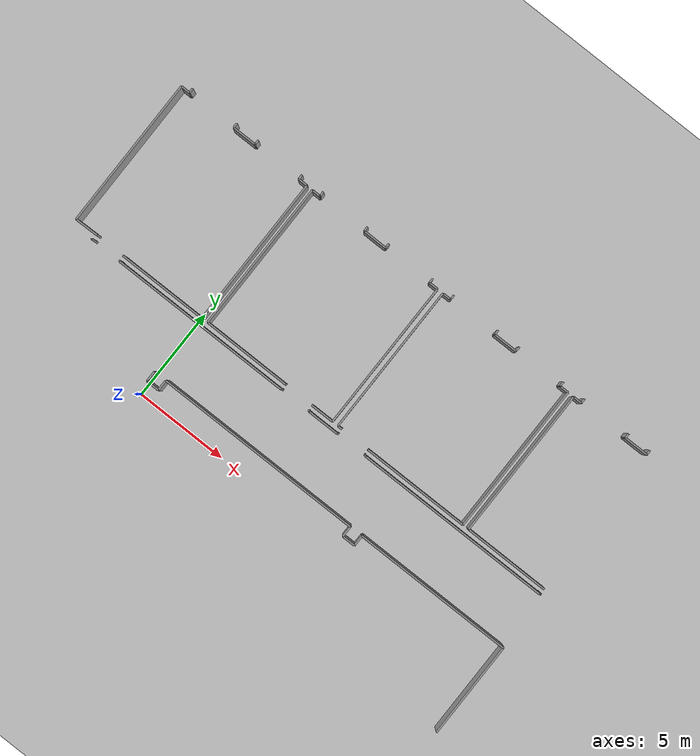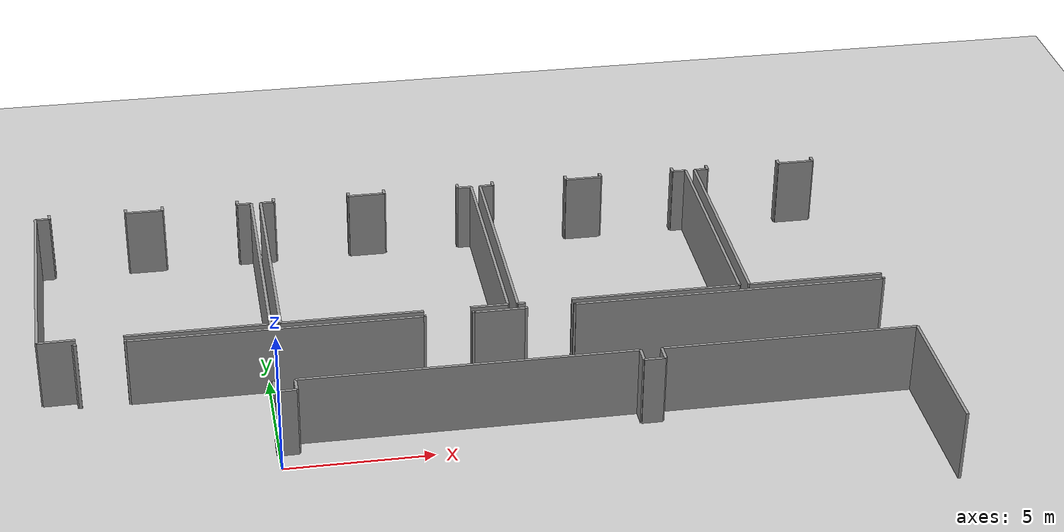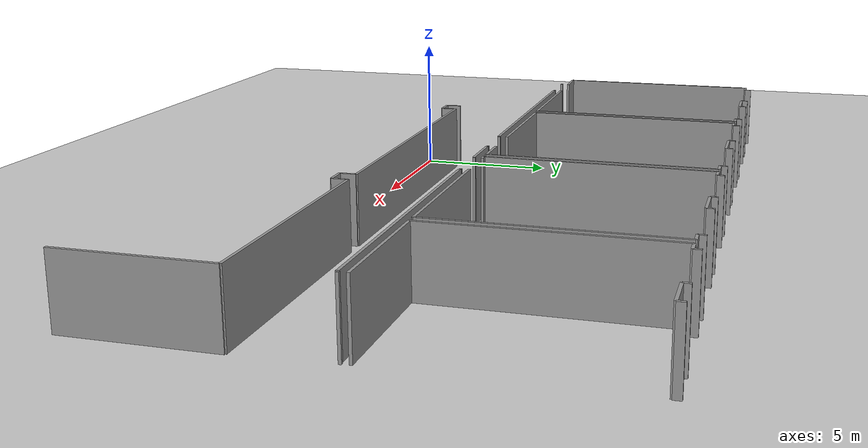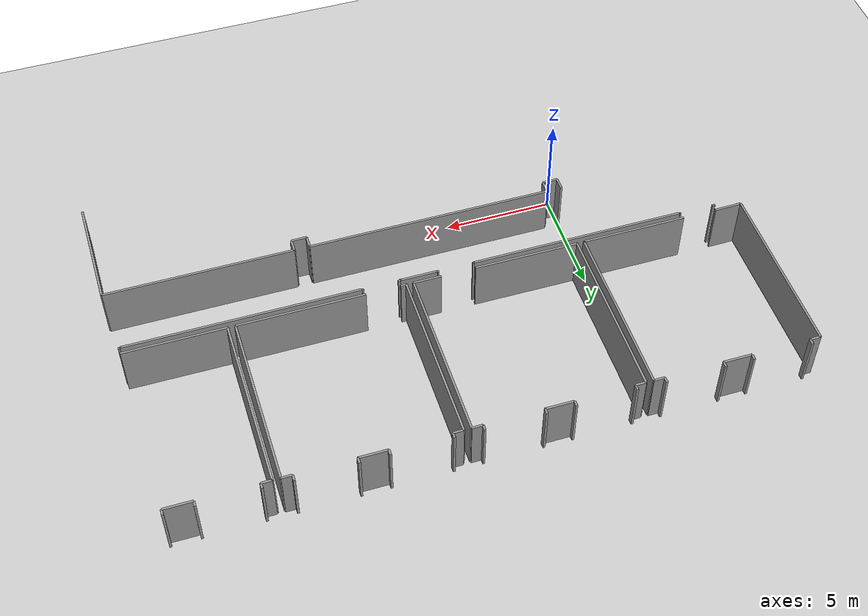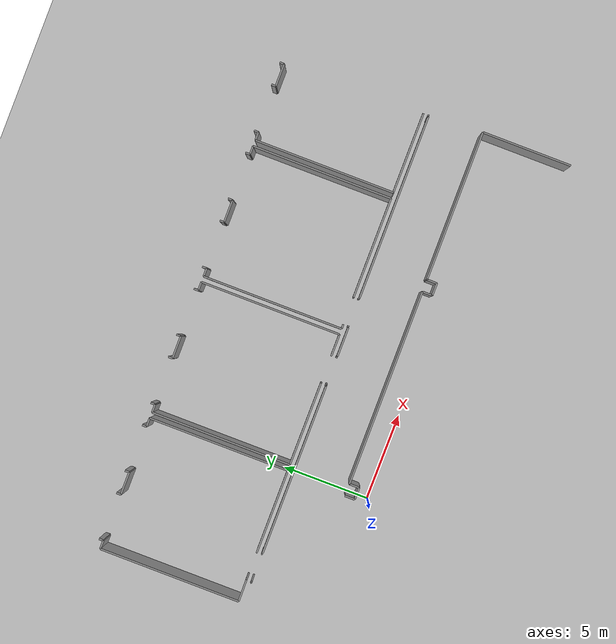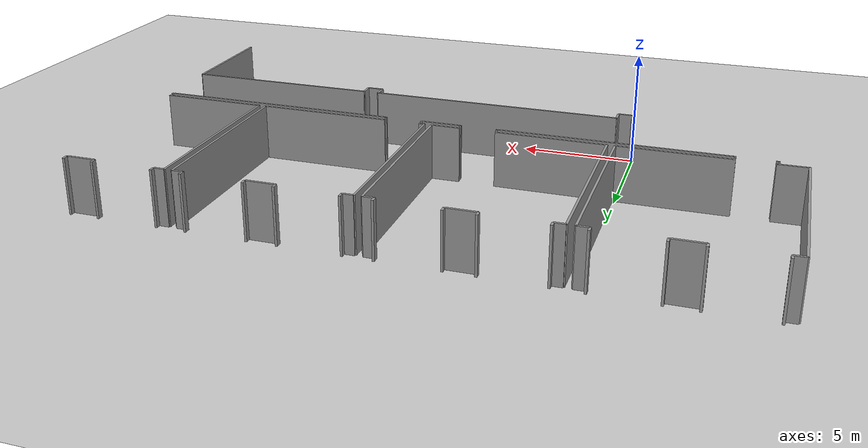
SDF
<sdf version="1.6">
 <world name="default">
  <model name="ground_plane">
   <static>1</static>
   <link name="link">
    <collision name="collision">
     <geometry><plane><normal>0 0 1</normal><size>100 100</size></plane></geometry>
     <surface><friction><ode><mu>100</mu><mu2>50</mu2></ode></friction></surface>
    </collision>
    <visual name="visual">
     <cast_shadows>0</cast_shadows>
     <geometry><plane><normal>0 0 1</normal><size>100 100</size></plane></geometry>
     <material>
      <script><uri>file://media/materials/scripts/gazebo.material</uri><name>Gazebo/Grey</name></script>
     </material>
    </visual>
   </link>
  </model>
  <model name="0510032258_A_40_1_105">
   <static>1</static>
   <link name="Wall_150">
    <collision name="Wall_150_Collision">
     <geometry><box><size>0.582630348613 0.1 2.5</size></box></geometry>
     <pose>0.291315174306 0 1.25 0 0 0</pose>
    </collision>
    <visual name="Wall_150_Visual">
     <pose>0.291315174306 0 1.25 0 0 0</pose>
     <geometry><box><size>0.582630348613 0.1 2.5</size></box></geometry>
     <material>
      <script><uri>file://media/materials/scripts/gazebo.material</uri><name>Gazebo/Grey</name></script>
      <ambient>1 1 1 1</ambient>
     </material>
    </visual>
    <pose>47.84010062 -11.8026476268 0 0 0 -1.57079632679</pose>
   </link>
   <link name="Wall_151">
    <collision name="Wall_151_Collision">
     <geometry><box><size>0.692524646814 0.1 2.5</size></box></geometry>
     <pose>0.346262323407 0 1.25 0 0 0</pose>
    </collision>
    <visual name="Wall_151_Visual">
     <pose>0.346262323407 0 1.25 0 0 0</pose>
     <geometry><box><size>0.692524646814 0.1 2.5</size></box></geometry>
     <material>
      <script><uri>file://media/materials/scripts/gazebo.material</uri><name>Gazebo/Grey</name></script>
      <ambient>1 1 1 1</ambient>
     </material>
    </visual>
    <pose>47.84010062 -12.3852779754 0 0 0 0.0</pose>
   </link>
   <link name="Wall_152">
    <collision name="Wall_152_Collision">
     <geometry><box><size>0.577929667649 0.1 2.5</size></box></geometry>
     <pose>0.288964833825 0 1.25 0 0 0</pose>
    </collision>
    <visual name="Wall_152_Visual">
     <pose>0.288964833825 0 1.25 0 0 0</pose>
     <geometry><box><size>0.577929667649 0.1 2.5</size></box></geometry>
     <material>
      <script><uri>file://media/materials/scripts/gazebo.material</uri><name>Gazebo/Grey</name></script>
      <ambient>1 1 1 1</ambient>
     </material>
    </visual>
    <pose>48.5326252668 -12.3852779754 0 0 0 1.57079632679</pose>
   </link>
   <link name="Wall_153">
    <collision name="Wall_153_Collision">
     <geometry><box><size>11.3070433987 0.1 2.5</size></box></geometry>
     <pose>5.65352169936 0 1.25 0 0 0</pose>
    </collision>
    <visual name="Wall_153_Visual">
     <pose>5.65352169936 0 1.25 0 0 0</pose>
     <geometry><box><size>11.3070433987 0.1 2.5</size></box></geometry>
     <material>
      <script><uri>file://media/materials/scripts/gazebo.material</uri><name>Gazebo/Grey</name></script>
      <ambient>1 1 1 1</ambient>
     </material>
    </visual>
    <pose>48.5326252668 -11.8073483078 0 0 0 0.0</pose>
   </link>
   <link name="Wall_154">
    <collision name="Wall_154_Collision">
     <geometry><box><size>0.58148693973 0.1 2.5</size></box></geometry>
     <pose>0.290743469865 0 1.25 0 0 0</pose>
    </collision>
    <visual name="Wall_154_Visual">
     <pose>0.290743469865 0 1.25 0 0 0</pose>
     <geometry><box><size>0.58148693973 0.1 2.5</size></box></geometry>
     <material>
      <script><uri>file://media/materials/scripts/gazebo.material</uri><name>Gazebo/Grey</name></script>
      <ambient>1 1 1 1</ambient>
     </material>
    </visual>
    <pose>59.8396686655 -11.8073483078 0 0 0 -1.57079632679</pose>
   </link>
   <link name="Wall_155">
    <collision name="Wall_155_Collision">
     <geometry><box><size>0.710183961785 0.1 2.5</size></box></geometry>
     <pose>0.355091980892 0 1.25 0 0 0</pose>
    </collision>
    <visual name="Wall_155_Visual">
     <pose>0.355091980892 0 1.25 0 0 0</pose>
     <geometry><box><size>0.710183961785 0.1 2.5</size></box></geometry>
     <material>
      <script><uri>file://media/materials/scripts/gazebo.material</uri><name>Gazebo/Grey</name></script>
      <ambient>1 1 1 1</ambient>
     </material>
    </visual>
    <pose>59.8396686655 -12.3888352475 0 0 0 0.0</pose>
   </link>
   <link name="Wall_156">
    <collision name="Wall_156_Collision">
     <geometry><box><size>0.58148693973 0.1 2.5</size></box></geometry>
     <pose>0.290743469865 0 1.25 0 0 0</pose>
    </collision>
    <visual name="Wall_156_Visual">
     <pose>0.290743469865 0 1.25 0 0 0</pose>
     <geometry><box><size>0.58148693973 0.1 2.5</size></box></geometry>
     <material>
      <script><uri>file://media/materials/scripts/gazebo.material</uri><name>Gazebo/Grey</name></script>
      <ambient>1 1 1 1</ambient>
     </material>
    </visual>
    <pose>60.5498526273 -12.3888352475 0 0 0 1.57079632679</pose>
   </link>
   <link name="Wall_157">
    <collision name="Wall_157_Collision">
     <geometry><box><size>8.66208456144 0.1 2.5</size></box></geometry>
     <pose>4.33104228072 0 1.25 0 0 0</pose>
    </collision>
    <visual name="Wall_157_Visual">
     <pose>4.33104228072 0 1.25 0 0 0</pose>
     <geometry><box><size>8.66208456144 0.1 2.5</size></box></geometry>
     <material>
      <script><uri>file://media/materials/scripts/gazebo.material</uri><name>Gazebo/Grey</name></script>
      <ambient>1 1 1 1</ambient>
     </material>
    </visual>
    <pose>60.5498526273 -11.8073483078 0 0 0 0.0</pose>
   </link>
   <link name="Wall_158">
    <collision name="Wall_158_Collision">
     <geometry><box><size>5.16960565098 0.1 2.5</size></box></geometry>
     <pose>2.58480282549 0 1.25 0 0 0</pose>
    </collision>
    <visual name="Wall_158_Visual">
     <pose>2.58480282549 0 1.25 0 0 0</pose>
     <geometry><box><size>5.16960565098 0.1 2.5</size></box></geometry>
     <material>
      <script><uri>file://media/materials/scripts/gazebo.material</uri><name>Gazebo/Grey</name></script>
      <ambient>1 1 1 1</ambient>
     </material>
    </visual>
    <pose>69.2119371887 -11.8073483078 0 0 0 -1.57079632679</pose>
   </link>
   <link name="Wall_308">
    <collision name="Wall_308_Collision">
     <geometry><box><size>8.1371328387 0.1 2.5</size></box></geometry>
     <pose>4.06856641935 0 1.25 0 0 0</pose>
    </collision>
    <visual name="Wall_308_Visual">
     <pose>4.06856641935 0 1.25 0 0 0</pose>
     <geometry><box><size>8.1371328387 0.1 2.5</size></box></geometry>
     <material>
      <script><uri>file://media/materials/scripts/gazebo.material</uri><name>Gazebo/Grey</name></script>
      <ambient>1 1 1 1</ambient>
     </material>
    </visual>
    <pose>40.3412440289 -8.40062506352 0 0 0 1.57079632679</pose>
   </link>
   <link name="Wall_309">
    <collision name="Wall_309_Collision">
     <geometry><box><size>0.487473320459 0.1 2.5</size></box></geometry>
     <pose>0.24373666023 0 1.25 0 0 0</pose>
    </collision>
    <visual name="Wall_309_Visual">
     <pose>0.24373666023 0 1.25 0 0 0</pose>
     <geometry><box><size>0.487473320459 0.1 2.5</size></box></geometry>
     <material>
      <script><uri>file://media/materials/scripts/gazebo.material</uri><name>Gazebo/Grey</name></script>
      <ambient>1 1 1 1</ambient>
     </material>
    </visual>
    <pose>40.3412440289 -0.26349222482 0 0 0 0.0</pose>
   </link>
   <link name="Wall_310">
    <collision name="Wall_310_Collision">
     <geometry><box><size>0.257902225836 0.1 2.5</size></box></geometry>
     <pose>0.128951112918 0 1.25 0 0 0</pose>
    </collision>
    <visual name="Wall_310_Visual">
     <pose>0.128951112918 0 1.25 0 0 0</pose>
     <geometry><box><size>0.257902225836 0.1 2.5</size></box></geometry>
     <material>
      <script><uri>file://media/materials/scripts/gazebo.material</uri><name>Gazebo/Grey</name></script>
      <ambient>1 1 1 1</ambient>
     </material>
    </visual>
    <pose>40.8287173493 -0.26349222482 0 0 0 1.57079632679</pose>
   </link>
   <link name="Wall_311">
    <collision name="Wall_311_Collision">
     <geometry><box><size>0.256250635227 0.1 2.5</size></box></geometry>
     <pose>0.128125317614 0 1.25 0 0 0</pose>
    </collision>
    <visual name="Wall_311_Visual">
     <pose>0.128125317614 0 1.25 0 0 0</pose>
     <geometry><box><size>0.256250635227 0.1 2.5</size></box></geometry>
     <material>
      <script><uri>file://media/materials/scripts/gazebo.material</uri><name>Gazebo/Grey</name></script>
      <ambient>1 1 1 1</ambient>
     </material>
    </visual>
    <pose>43.5346579937 -0.00558999898364 0 0 0 -1.57079632679</pose>
   </link>
   <link name="Wall_312">
    <collision name="Wall_312_Collision">
     <geometry><box><size>1.30729748958 0.1 2.5</size></box></geometry>
     <pose>0.653648744791 0 1.25 0 0 0</pose>
    </collision>
    <visual name="Wall_312_Visual">
     <pose>0.653648744791 0 1.25 0 0 0</pose>
     <geometry><box><size>1.30729748958 0.1 2.5</size></box></geometry>
     <material>
      <script><uri>file://media/materials/scripts/gazebo.material</uri><name>Gazebo/Grey</name></script>
      <ambient>1 1 1 1</ambient>
     </material>
    </visual>
    <pose>43.5346579937 -0.261840634211 0 0 0 0.0</pose>
   </link>
   <link name="Wall_313">
    <collision name="Wall_313_Collision">
     <geometry><box><size>0.256377680659 0.1 2.5</size></box></geometry>
     <pose>0.128188840329 0 1.25 0 0 0</pose>
    </collision>
    <visual name="Wall_313_Visual">
     <pose>0.128188840329 0 1.25 0 0 0</pose>
     <geometry><box><size>0.256377680659 0.1 2.5</size></box></geometry>
     <material>
      <script><uri>file://media/materials/scripts/gazebo.material</uri><name>Gazebo/Grey</name></script>
      <ambient>1 1 1 1</ambient>
     </material>
    </visual>
    <pose>44.8419554833 -0.261840634211 0 0 0 1.57079632679</pose>
   </link>
   <link name="Wall_314">
    <collision name="Wall_314_Collision">
     <geometry><box><size>0.252185181421 0.1 2.5</size></box></geometry>
     <pose>0.12609259071 0 1.25 0 0 0</pose>
    </collision>
    <visual name="Wall_314_Visual">
     <pose>0.12609259071 0 1.25 0 0 0</pose>
     <geometry><box><size>0.252185181421 0.1 2.5</size></box></geometry>
     <material>
      <script><uri>file://media/materials/scripts/gazebo.material</uri><name>Gazebo/Grey</name></script>
      <ambient>1 1 1 1</ambient>
     </material>
    </visual>
    <pose>47.52502795 -0.0054629535522 0 0 0 -1.57079632679</pose>
   </link>
   <link name="Wall_315">
    <collision name="Wall_315_Collision">
     <geometry><box><size>0.499288545584 0.1 2.5</size></box></geometry>
     <pose>0.249644272792 0 1.25 0 0 0</pose>
    </collision>
    <visual name="Wall_315_Visual">
     <pose>0.249644272792 0 1.25 0 0 0</pose>
     <geometry><box><size>0.499288545584 0.1 2.5</size></box></geometry>
     <material>
      <script><uri>file://media/materials/scripts/gazebo.material</uri><name>Gazebo/Grey</name></script>
      <ambient>1 1 1 1</ambient>
     </material>
    </visual>
    <pose>47.52502795 -0.257648134973 0 0 0 0.0</pose>
   </link>
   <link name="Wall_316">
    <collision name="Wall_316_Collision">
     <geometry><box><size>8.12341193211 0.1 2.5</size></box></geometry>
     <pose>4.06170596605 0 1.25 0 0 0</pose>
    </collision>
    <visual name="Wall_316_Visual">
     <pose>4.06170596605 0 1.25 0 0 0</pose>
     <geometry><box><size>8.12341193211 0.1 2.5</size></box></geometry>
     <material>
      <script><uri>file://media/materials/scripts/gazebo.material</uri><name>Gazebo/Grey</name></script>
      <ambient>1 1 1 1</ambient>
     </material>
    </visual>
    <pose>48.0243164956 -0.257648134973 0 0 0 -1.57079632679</pose>
   </link>
   <link name="Wall_317">
    <collision name="Wall_317_Collision">
     <geometry><box><size>4.84475048277 0.1 2.5</size></box></geometry>
     <pose>2.42237524139 0 1.25 0 0 0</pose>
    </collision>
    <visual name="Wall_317_Visual">
     <pose>2.42237524139 0 1.25 0 0 0</pose>
     <geometry><box><size>4.84475048277 0.1 2.5</size></box></geometry>
     <material>
      <script><uri>file://media/materials/scripts/gazebo.material</uri><name>Gazebo/Grey</name></script>
      <ambient>1 1 1 1</ambient>
     </material>
    </visual>
    <pose>48.0243164956 -8.38106006708 0 0 0 3.14159265359</pose>
   </link>
   <link name="Wall_318">
    <collision name="Wall_318_Collision">
     <geometry><box><size>1.2662859252 0.1 2.5</size></box></geometry>
     <pose>0.633142962601 0 1.25 0 0 0</pose>
    </collision>
    <visual name="Wall_318_Visual">
     <pose>0.633142962601 0 1.25 0 0 0</pose>
     <geometry><box><size>1.2662859252 0.1 2.5</size></box></geometry>
     <material>
      <script><uri>file://media/materials/scripts/gazebo.material</uri><name>Gazebo/Grey</name></script>
      <ambient>1 1 1 1</ambient>
     </material>
    </visual>
    <pose>41.6073787987 -8.38106006708 0 0 0 -3.12614134471</pose>
   </link>
   <link name="Wall_319">
    <collision name="Wall_319_Collision">
     <geometry><box><size>8.10028966358 0.1 2.5</size></box></geometry>
     <pose>4.05014483179 0 1.25 0 0 0</pose>
    </collision>
    <visual name="Wall_319_Visual">
     <pose>4.05014483179 0 1.25 0 0 0</pose>
     <geometry><box><size>8.10028966358 0.1 2.5</size></box></geometry>
     <material>
      <script><uri>file://media/materials/scripts/gazebo.material</uri><name>Gazebo/Grey</name></script>
      <ambient>1 1 1 1</ambient>
     </material>
    </visual>
    <pose>48.3606057526 -8.3686096148 0 0 0 1.57079632679</pose>
   </link>
   <link name="Wall_320">
    <collision name="Wall_320_Collision">
     <geometry><box><size>0.472863095843 0.1 2.5</size></box></geometry>
     <pose>0.236431547922 0 1.25 0 0 0</pose>
    </collision>
    <visual name="Wall_320_Visual">
     <pose>0.236431547922 0 1.25 0 0 0</pose>
     <geometry><box><size>0.472863095843 0.1 2.5</size></box></geometry>
     <material>
      <script><uri>file://media/materials/scripts/gazebo.material</uri><name>Gazebo/Grey</name></script>
      <ambient>1 1 1 1</ambient>
     </material>
    </visual>
    <pose>48.3606057526 -0.268319951215 0 0 0 0.0</pose>
   </link>
   <link name="Wall_321">
    <collision name="Wall_321_Collision">
     <geometry><box><size>0.257902225836 0.1 2.5</size></box></geometry>
     <pose>0.128951112918 0 1.25 0 0 0</pose>
    </collision>
    <visual name="Wall_321_Visual">
     <pose>0.128951112918 0 1.25 0 0 0</pose>
     <geometry><box><size>0.257902225836 0.1 2.5</size></box></geometry>
     <material>
      <script><uri>file://media/materials/scripts/gazebo.material</uri><name>Gazebo/Grey</name></script>
      <ambient>1 1 1 1</ambient>
     </material>
    </visual>
    <pose>48.8334688485 -0.268319951215 0 0 0 1.57079632679</pose>
   </link>
   <link name="Wall_322">
    <collision name="Wall_322_Collision">
     <geometry><box><size>0.248373818477 0.1 2.5</size></box></geometry>
     <pose>0.124186909239 0 1.25 0 0 0</pose>
    </collision>
    <visual name="Wall_322_Visual">
     <pose>0.124186909239 0 1.25 0 0 0</pose>
     <geometry><box><size>0.248373818477 0.1 2.5</size></box></geometry>
     <material>
      <script><uri>file://media/materials/scripts/gazebo.material</uri><name>Gazebo/Grey</name></script>
      <ambient>1 1 1 1</ambient>
     </material>
    </visual>
    <pose>51.5415692652 -0.0104177253786 0 0 0 -1.57079632679</pose>
   </link>
   <link name="Wall_323">
    <collision name="Wall_323_Collision">
     <geometry><box><size>1.29903953654 0.1 2.5</size></box></geometry>
     <pose>0.649519768269 0 1.25 0 0 0</pose>
    </collision>
    <visual name="Wall_323_Visual">
     <pose>0.649519768269 0 1.25 0 0 0</pose>
     <geometry><box><size>1.29903953654 0.1 2.5</size></box></geometry>
     <material>
      <script><uri>file://media/materials/scripts/gazebo.material</uri><name>Gazebo/Grey</name></script>
      <ambient>1 1 1 1</ambient>
     </material>
    </visual>
    <pose>51.5415692652 -0.258791543856 0 0 0 0.0</pose>
   </link>
   <link name="Wall_324">
    <collision name="Wall_324_Collision">
     <geometry><box><size>0.253201544872 0.1 2.5</size></box></geometry>
     <pose>0.126600772436 0 1.25 0 0 0</pose>
    </collision>
    <visual name="Wall_324_Visual">
     <pose>0.126600772436 0 1.25 0 0 0</pose>
     <geometry><box><size>0.253201544872 0.1 2.5</size></box></geometry>
     <material>
      <script><uri>file://media/materials/scripts/gazebo.material</uri><name>Gazebo/Grey</name></script>
      <ambient>1 1 1 1</ambient>
     </material>
    </visual>
    <pose>52.8406088017 -0.258791543856 0 0 0 1.57079632679</pose>
   </link>
   <link name="Wall_325">
    <collision name="Wall_325_Collision">
     <geometry><box><size>0.255361317207 0.1 2.5</size></box></geometry>
     <pose>0.127680658604 0 1.25 0 0 0</pose>
    </collision>
    <visual name="Wall_325_Visual">
     <pose>0.127680658604 0 1.25 0 0 0</pose>
     <geometry><box><size>0.255361317207 0.1 2.5</size></box></geometry>
     <material>
      <script><uri>file://media/materials/scripts/gazebo.material</uri><name>Gazebo/Grey</name></script>
      <ambient>1 1 1 1</ambient>
     </material>
    </visual>
    <pose>55.5321933123 -0.00558999898364 0 0 0 -1.57079632679</pose>
   </link>
   <link name="Wall_326">
    <collision name="Wall_326_Collision">
     <geometry><box><size>0.494333773757 0.1 2.5</size></box></geometry>
     <pose>0.247166886879 0 1.25 0 0 0</pose>
    </collision>
    <visual name="Wall_326_Visual">
     <pose>0.247166886879 0 1.25 0 0 0</pose>
     <geometry><box><size>0.494333773757 0.1 2.5</size></box></geometry>
     <material>
      <script><uri>file://media/materials/scripts/gazebo.material</uri><name>Gazebo/Grey</name></script>
      <ambient>1 1 1 1</ambient>
     </material>
    </visual>
    <pose>55.5321933123 -0.260951316191 0 0 0 0.0</pose>
   </link>
   <link name="Wall_327">
    <collision name="Wall_327_Collision">
     <geometry><box><size>8.11718670597 0.1 2.5</size></box></geometry>
     <pose>4.05859335298 0 1.25 0 0 0</pose>
    </collision>
    <visual name="Wall_327_Visual">
     <pose>4.05859335298 0 1.25 0 0 0</pose>
     <geometry><box><size>8.11718670597 0.1 2.5</size></box></geometry>
     <material>
      <script><uri>file://media/materials/scripts/gazebo.material</uri><name>Gazebo/Grey</name></script>
      <ambient>1 1 1 1</ambient>
     </material>
    </visual>
    <pose>56.0265270861 -0.260951316191 0 0 0 -1.57079632679</pose>
   </link>
   <link name="Wall_328">
    <collision name="Wall_328_Collision">
     <geometry><box><size>1.28023681268 0.1 2.5</size></box></geometry>
     <pose>0.640118406342 0 1.25 0 0 0</pose>
    </collision>
    <visual name="Wall_328_Visual">
     <pose>0.640118406342 0 1.25 0 0 0</pose>
     <geometry><box><size>1.28023681268 0.1 2.5</size></box></geometry>
     <material>
      <script><uri>file://media/materials/scripts/gazebo.material</uri><name>Gazebo/Grey</name></script>
      <ambient>1 1 1 1</ambient>
     </material>
    </visual>
    <pose>56.0265270861 -8.37813802216 0 0 0 3.14159265359</pose>
   </link>
   <link name="Wall_329">
    <collision name="Wall_329_Collision">
     <geometry><box><size>4.80131039999 0.1 2.5</size></box></geometry>
     <pose>2.4006552 0 1.25 0 0 0</pose>
    </collision>
    <visual name="Wall_329_Visual">
     <pose>2.4006552 0 1.25 0 0 0</pose>
     <geometry><box><size>4.80131039999 0.1 2.5</size></box></geometry>
     <material>
      <script><uri>file://media/materials/scripts/gazebo.material</uri><name>Gazebo/Grey</name></script>
      <ambient>1 1 1 1</ambient>
     </material>
    </visual>
    <pose>53.1619066978 -8.37813802216 0 0 0 3.1396081092</pose>
   </link>
   <link name="Wall_330">
    <collision name="Wall_330_Collision">
     <geometry><box><size>8.12087102348 0.1 2.5</size></box></geometry>
     <pose>4.06043551174 0 1.25 0 0 0</pose>
    </collision>
    <visual name="Wall_330_Visual">
     <pose>4.06043551174 0 1.25 0 0 0</pose>
     <geometry><box><size>8.12087102348 0.1 2.5</size></box></geometry>
     <material>
      <script><uri>file://media/materials/scripts/gazebo.material</uri><name>Gazebo/Grey</name></script>
      <ambient>1 1 1 1</ambient>
     </material>
    </visual>
    <pose>56.3560829353 -8.3843632483 0 0 0 1.57079632679</pose>
   </link>
   <link name="Wall_331">
    <collision name="Wall_331_Collision">
     <geometry><box><size>0.47260900498 0.1 2.5</size></box></geometry>
     <pose>0.23630450249 0 1.25 0 0 0</pose>
    </collision>
    <visual name="Wall_331_Visual">
     <pose>0.23630450249 0 1.25 0 0 0</pose>
     <geometry><box><size>0.47260900498 0.1 2.5</size></box></geometry>
     <material>
      <script><uri>file://media/materials/scripts/gazebo.material</uri><name>Gazebo/Grey</name></script>
      <ambient>1 1 1 1</ambient>
     </material>
    </visual>
    <pose>56.3560829353 -0.26349222482 0 0 0 0.0</pose>
   </link>
   <link name="Wall_332">
    <collision name="Wall_332_Collision">
     <geometry><box><size>0.257902225836 0.1 2.5</size></box></geometry>
     <pose>0.128951112918 0 1.25 0 0 0</pose>
    </collision>
    <visual name="Wall_332_Visual">
     <pose>0.128951112918 0 1.25 0 0 0</pose>
     <geometry><box><size>0.257902225836 0.1 2.5</size></box></geometry>
     <material>
      <script><uri>file://media/materials/scripts/gazebo.material</uri><name>Gazebo/Grey</name></script>
      <ambient>1 1 1 1</ambient>
     </material>
    </visual>
    <pose>56.8286919402 -0.26349222482 0 0 0 1.57079632679</pose>
   </link>
   <link name="Wall_333">
    <collision name="Wall_333_Collision">
     <geometry><box><size>0.256123589796 0.1 2.5</size></box></geometry>
     <pose>0.128061794898 0 1.25 0 0 0</pose>
    </collision>
    <visual name="Wall_333_Visual">
     <pose>0.128061794898 0 1.25 0 0 0</pose>
     <geometry><box><size>0.256123589796 0.1 2.5</size></box></geometry>
     <material>
      <script><uri>file://media/materials/scripts/gazebo.material</uri><name>Gazebo/Grey</name></script>
      <ambient>1 1 1 1</ambient>
     </material>
    </visual>
    <pose>59.5407307653 -0.00558999898364 0 0 0 -1.57079632679</pose>
   </link>
   <link name="Wall_334">
    <collision name="Wall_334_Collision">
     <geometry><box><size>1.29573635532 0.1 2.5</size></box></geometry>
     <pose>0.64786817766 0 1.25 0 0 0</pose>
    </collision>
    <visual name="Wall_334_Visual">
     <pose>0.64786817766 0 1.25 0 0 0</pose>
     <geometry><box><size>1.29573635532 0.1 2.5</size></box></geometry>
     <material>
      <script><uri>file://media/materials/scripts/gazebo.material</uri><name>Gazebo/Grey</name></script>
      <ambient>1 1 1 1</ambient>
     </material>
    </visual>
    <pose>59.5407307653 -0.261713588779 0 0 0 0.0</pose>
   </link>
   <link name="Wall_335">
    <collision name="Wall_335_Collision">
     <geometry><box><size>0.261713588779 0.1 2.5</size></box></geometry>
     <pose>0.13085679439 0 1.25 0 0 0</pose>
    </collision>
    <visual name="Wall_335_Visual">
     <pose>0.13085679439 0 1.25 0 0 0</pose>
     <geometry><box><size>0.261713588779 0.1 2.5</size></box></geometry>
     <material>
      <script><uri>file://media/materials/scripts/gazebo.material</uri><name>Gazebo/Grey</name></script>
      <ambient>1 1 1 1</ambient>
     </material>
    </visual>
    <pose>60.8364671206 -0.261713588779 0 0 0 1.57079632679</pose>
   </link>
   <link name="Wall_336">
    <collision name="Wall_336_Collision">
     <geometry><box><size>0.262094725074 0.1 2.5</size></box></geometry>
     <pose>0.131047362537 0 1.25 0 0 0</pose>
    </collision>
    <visual name="Wall_336_Visual">
     <pose>0.131047362537 0 1.25 0 0 0</pose>
     <geometry><box><size>0.262094725074 0.1 2.5</size></box></geometry>
     <material>
      <script><uri>file://media/materials/scripts/gazebo.material</uri><name>Gazebo/Grey</name></script>
      <ambient>1 1 1 1</ambient>
     </material>
    </visual>
    <pose>63.5344039028 -0.0 0 0 0 -1.57079632679</pose>
   </link>
   <link name="Wall_337">
    <collision name="Wall_337_Collision">
     <geometry><box><size>0.486075820713 0.1 2.5</size></box></geometry>
     <pose>0.243037910357 0 1.25 0 0 0</pose>
    </collision>
    <visual name="Wall_337_Visual">
     <pose>0.243037910357 0 1.25 0 0 0</pose>
     <geometry><box><size>0.486075820713 0.1 2.5</size></box></geometry>
     <material>
      <script><uri>file://media/materials/scripts/gazebo.material</uri><name>Gazebo/Grey</name></script>
      <ambient>1 1 1 1</ambient>
     </material>
    </visual>
    <pose>63.5344039028 -0.262094725074 0 0 0 0.0</pose>
   </link>
   <link name="Wall_338">
    <collision name="Wall_338_Collision">
     <geometry><box><size>8.11604329708 0.1 2.5</size></box></geometry>
     <pose>4.05802164854 0 1.25 0 0 0</pose>
    </collision>
    <visual name="Wall_338_Visual">
     <pose>4.05802164854 0 1.25 0 0 0</pose>
     <geometry><box><size>8.11604329708 0.1 2.5</size></box></geometry>
     <material>
      <script><uri>file://media/materials/scripts/gazebo.material</uri><name>Gazebo/Grey</name></script>
      <ambient>1 1 1 1</ambient>
     </material>
    </visual>
    <pose>64.0204797235 -0.262094725074 0 0 0 -1.57079632679</pose>
   </link>
   <link name="Wall_339">
    <collision name="Wall_339_Collision">
     <geometry><box><size>5.82122166887 0.1 2.5</size></box></geometry>
     <pose>2.91061083443 0 1.25 0 0 0</pose>
    </collision>
    <visual name="Wall_339_Visual">
     <pose>2.91061083443 0 1.25 0 0 0</pose>
     <geometry><box><size>5.82122166887 0.1 2.5</size></box></geometry>
     <material>
      <script><uri>file://media/materials/scripts/gazebo.material</uri><name>Gazebo/Grey</name></script>
      <ambient>1 1 1 1</ambient>
     </material>
    </visual>
    <pose>64.0204797235 -8.37813802216 0 0 0 3.14159265359</pose>
   </link>
   <link name="Wall_340">
    <collision name="Wall_340_Collision">
     <geometry><box><size>0.263692762677 0.1 2.5</size></box></geometry>
     <pose>0.131846381338 0 1.25 0 0 0</pose>
    </collision>
    <visual name="Wall_340_Visual">
     <pose>0.131846381338 0 1.25 0 0 0</pose>
     <geometry><box><size>0.263692762677 0.1 2.5</size></box></geometry>
     <material>
      <script><uri>file://media/materials/scripts/gazebo.material</uri><name>Gazebo/Grey</name></script>
      <ambient>1 1 1 1</ambient>
     </material>
    </visual>
    <pose>56.6197022055 -8.37813802216 0 0 0 -3.11798258377</pose>
   </link>
   <link name="Wall_341">
    <collision name="Wall_341_Collision">
     <geometry><box><size>8.10981807094 0.1 2.5</size></box></geometry>
     <pose>4.05490903547 0 1.25 0 0 0</pose>
    </collision>
    <visual name="Wall_341_Visual">
     <pose>4.05490903547 0 1.25 0 0 0</pose>
     <geometry><box><size>8.10981807094 0.1 2.5</size></box></geometry>
     <material>
      <script><uri>file://media/materials/scripts/gazebo.material</uri><name>Gazebo/Grey</name></script>
      <ambient>1 1 1 1</ambient>
     </material>
    </visual>
    <pose>64.362486025 -8.37686756784 0 0 0 1.57079632679</pose>
   </link>
   <link name="Wall_342">
    <collision name="Wall_342_Collision">
     <geometry><box><size>0.475404004472 0.1 2.5</size></box></geometry>
     <pose>0.237702002236 0 1.25 0 0 0</pose>
    </collision>
    <visual name="Wall_342_Visual">
     <pose>0.237702002236 0 1.25 0 0 0</pose>
     <geometry><box><size>0.475404004472 0.1 2.5</size></box></geometry>
     <material>
      <script><uri>file://media/materials/scripts/gazebo.material</uri><name>Gazebo/Grey</name></script>
      <ambient>1 1 1 1</ambient>
     </material>
    </visual>
    <pose>64.362486025 -0.2670494969 0 0 0 0.0</pose>
   </link>
   <link name="Wall_343">
    <collision name="Wall_343_Collision">
     <geometry><box><size>0.257521089542 0.1 2.5</size></box></geometry>
     <pose>0.128760544771 0 1.25 0 0 0</pose>
    </collision>
    <visual name="Wall_343_Visual">
     <pose>0.128760544771 0 1.25 0 0 0</pose>
     <geometry><box><size>0.257521089542 0.1 2.5</size></box></geometry>
     <material>
      <script><uri>file://media/materials/scripts/gazebo.material</uri><name>Gazebo/Grey</name></script>
      <ambient>1 1 1 1</ambient>
     </material>
    </visual>
    <pose>64.8378900295 -0.2670494969 0 0 0 1.57079632679</pose>
   </link>
   <link name="Wall_344">
    <collision name="Wall_344_Collision">
     <geometry><box><size>0.248119727615 0.1 2.5</size></box></geometry>
     <pose>0.124059863807 0 1.25 0 0 0</pose>
    </collision>
    <visual name="Wall_344_Visual">
     <pose>0.124059863807 0 1.25 0 0 0</pose>
     <geometry><box><size>0.248119727615 0.1 2.5</size></box></geometry>
     <material>
      <script><uri>file://media/materials/scripts/gazebo.material</uri><name>Gazebo/Grey</name></script>
      <ambient>1 1 1 1</ambient>
     </material>
    </visual>
    <pose>67.5384947657 -0.00952840735847 0 0 0 -1.57079632679</pose>
   </link>
   <link name="Wall_345">
    <collision name="Wall_345_Collision">
     <geometry><box><size>1.29700680964 0.1 2.5</size></box></geometry>
     <pose>0.648503404818 0 1.25 0 0 0</pose>
    </collision>
    <visual name="Wall_345_Visual">
     <pose>0.648503404818 0 1.25 0 0 0</pose>
     <geometry><box><size>1.29700680964 0.1 2.5</size></box></geometry>
     <material>
      <script><uri>file://media/materials/scripts/gazebo.material</uri><name>Gazebo/Grey</name></script>
      <ambient>1 1 1 1</ambient>
     </material>
    </visual>
    <pose>67.5384947657 -0.257648134973 0 0 0 0.0</pose>
   </link>
   <link name="Wall_346">
    <collision name="Wall_346_Collision">
     <geometry><box><size>0.257521089542 0.1 2.5</size></box></geometry>
     <pose>0.128760544771 0 1.25 0 0 0</pose>
    </collision>
    <visual name="Wall_346_Visual">
     <pose>0.128760544771 0 1.25 0 0 0</pose>
     <geometry><box><size>0.257521089542 0.1 2.5</size></box></geometry>
     <material>
      <script><uri>file://media/materials/scripts/gazebo.material</uri><name>Gazebo/Grey</name></script>
      <ambient>1 1 1 1</ambient>
     </material>
    </visual>
    <pose>68.8355015754 -0.257648134973 0 0 0 1.57079632679</pose>
   </link>
   <link name="Wall_351">
    <collision name="Wall_351_Collision">
     <geometry><box><size>4.64999383506 0.1 2.5</size></box></geometry>
     <pose>2.32499691753 0 1.25 0 0 0</pose>
    </collision>
    <visual name="Wall_351_Visual">
     <pose>2.32499691753 0 1.25 0 0 0</pose>
     <geometry><box><size>4.64999383506 0.1 2.5</size></box></geometry>
     <material>
      <script><uri>file://media/materials/scripts/gazebo.material</uri><name>Gazebo/Grey</name></script>
      <ambient>1 1 1 1</ambient>
     </material>
    </visual>
    <pose>69.0124758614 -8.38296574855 0 0 0 3.14028121476</pose>
   </link>
   <link name="Wall_369">
    <collision name="Wall_369_Collision">
     <geometry><box><size>0.0229952230918 0.1 2.5</size></box></geometry>
     <pose>0.0114976115459 0 1.25 0 0 0</pose>
    </collision>
    <visual name="Wall_369_Visual">
     <pose>0.0114976115459 0 1.25 0 0 0</pose>
     <geometry><box><size>0.0229952230918 0.1 2.5</size></box></geometry>
     <material>
      <script><uri>file://media/materials/scripts/gazebo.material</uri><name>Gazebo/Grey</name></script>
      <ambient>1 1 1 1</ambient>
     </material>
    </visual>
    <pose>41.5291188129 -8.70172273605 0 0 0 1.57079632679</pose>
   </link>
   <link name="Wall_370">
    <collision name="Wall_370_Collision">
     <geometry><box><size>0.109513161907 0.1 2.5</size></box></geometry>
     <pose>0.0547565809533 0 1.25 0 0 0</pose>
    </collision>
    <visual name="Wall_370_Visual">
     <pose>0.0547565809533 0 1.25 0 0 0</pose>
     <geometry><box><size>0.109513161907 0.1 2.5</size></box></geometry>
     <material>
      <script><uri>file://media/materials/scripts/gazebo.material</uri><name>Gazebo/Grey</name></script>
      <ambient>1 1 1 1</ambient>
     </material>
    </visual>
    <pose>41.5291188129 -8.67872751296 0 0 0 0.0</pose>
   </link>
   <link name="Wall_371">
    <collision name="Wall_371_Collision">
     <geometry><box><size>0.0701290781583 0.1 2.5</size></box></geometry>
     <pose>0.0350645390792 0 1.25 0 0 0</pose>
    </collision>
    <visual name="Wall_371_Visual">
     <pose>0.0350645390792 0 1.25 0 0 0</pose>
     <geometry><box><size>0.0701290781583 0.1 2.5</size></box></geometry>
     <material>
      <script><uri>file://media/materials/scripts/gazebo.material</uri><name>Gazebo/Grey</name></script>
      <ambient>1 1 1 1</ambient>
     </material>
    </visual>
    <pose>43.1883321476 -8.67872751296 0 0 0 0.0</pose>
   </link>
   <link name="Wall_372">
    <collision name="Wall_372_Collision">
     <geometry><box><size>0.0195649964427 0.1 2.5</size></box></geometry>
     <pose>0.00978249822136 0 1.25 0 0 0</pose>
    </collision>
    <visual name="Wall_372_Visual">
     <pose>0.00978249822136 0 1.25 0 0 0</pose>
     <geometry><box><size>0.0195649964427 0.1 2.5</size></box></geometry>
     <material>
      <script><uri>file://media/materials/scripts/gazebo.material</uri><name>Gazebo/Grey</name></script>
      <ambient>1 1 1 1</ambient>
     </material>
    </visual>
    <pose>43.2584612257 -8.67872751296 0 0 0 -1.57079632679</pose>
   </link>
   <link name="Wall_373">
    <collision name="Wall_373_Collision">
     <geometry><box><size>9.85542229901 0.1 2.5</size></box></geometry>
     <pose>4.92771114951 0 1.25 0 0 0</pose>
    </collision>
    <visual name="Wall_373_Visual">
     <pose>4.92771114951 0 1.25 0 0 0</pose>
     <geometry><box><size>9.85542229901 0.1 2.5</size></box></geometry>
     <material>
      <script><uri>file://media/materials/scripts/gazebo.material</uri><name>Gazebo/Grey</name></script>
      <ambient>1 1 1 1</ambient>
     </material>
    </visual>
    <pose>43.2584612257 -8.6982925094 0 0 0 0.0</pose>
   </link>
   <link name="Wall_374">
    <collision name="Wall_374_Collision">
     <geometry><box><size>0.0254090862893 0.1 2.5</size></box></geometry>
     <pose>0.0127045431446 0 1.25 0 0 0</pose>
    </collision>
    <visual name="Wall_374_Visual">
     <pose>0.0127045431446 0 1.25 0 0 0</pose>
     <geometry><box><size>0.0254090862893 0.1 2.5</size></box></geometry>
     <material>
      <script><uri>file://media/materials/scripts/gazebo.material</uri><name>Gazebo/Grey</name></script>
      <ambient>1 1 1 1</ambient>
     </material>
    </visual>
    <pose>53.1138835247 -8.6982925094 0 0 0 1.57079632679</pose>
   </link>
   <link name="Wall_375">
    <collision name="Wall_375_Collision">
     <geometry><box><size>0.0900752108954 0.1 2.5</size></box></geometry>
     <pose>0.0450376054477 0 1.25 0 0 0</pose>
    </collision>
    <visual name="Wall_375_Visual">
     <pose>0.0450376054477 0 1.25 0 0 0</pose>
     <geometry><box><size>0.0900752108954 0.1 2.5</size></box></geometry>
     <material>
      <script><uri>file://media/materials/scripts/gazebo.material</uri><name>Gazebo/Grey</name></script>
      <ambient>1 1 1 1</ambient>
     </material>
    </visual>
    <pose>53.1138835247 -8.67288342311 0 0 0 0.0</pose>
   </link>
   <link name="Wall_376">
    <collision name="Wall_376_Collision">
     <geometry><box><size>0.0764813497307 0.1 2.5</size></box></geometry>
     <pose>0.0382406748653 0 1.25 0 0 0</pose>
    </collision>
    <visual name="Wall_376_Visual">
     <pose>0.0382406748653 0 1.25 0 0 0</pose>
     <geometry><box><size>0.0764813497307 0.1 2.5</size></box></geometry>
     <material>
      <script><uri>file://media/materials/scripts/gazebo.material</uri><name>Gazebo/Grey</name></script>
      <ambient>1 1 1 1</ambient>
     </material>
    </visual>
    <pose>54.7596300437 -8.67288342311 0 0 0 0.0</pose>
   </link>
   <link name="Wall_377">
    <collision name="Wall_377_Collision">
     <geometry><box><size>0.0254090862893 0.1 2.5</size></box></geometry>
     <pose>0.0127045431446 0 1.25 0 0 0</pose>
    </collision>
    <visual name="Wall_377_Visual">
     <pose>0.0127045431446 0 1.25 0 0 0</pose>
     <geometry><box><size>0.0254090862893 0.1 2.5</size></box></geometry>
     <material>
      <script><uri>file://media/materials/scripts/gazebo.material</uri><name>Gazebo/Grey</name></script>
      <ambient>1 1 1 1</ambient>
     </material>
    </visual>
    <pose>54.8361113934 -8.67288342311 0 0 0 -1.57079632679</pose>
   </link>
   <link name="Wall_378">
    <collision name="Wall_378_Collision">
     <geometry><box><size>1.71104787072 0.1 2.5</size></box></geometry>
     <pose>0.855523935359 0 1.25 0 0 0</pose>
    </collision>
    <visual name="Wall_378_Visual">
     <pose>0.855523935359 0 1.25 0 0 0</pose>
     <geometry><box><size>1.71104787072 0.1 2.5</size></box></geometry>
     <material>
      <script><uri>file://media/materials/scripts/gazebo.material</uri><name>Gazebo/Grey</name></script>
      <ambient>1 1 1 1</ambient>
     </material>
    </visual>
    <pose>54.8361113934 -8.6982925094 0 0 0 0.0</pose>
   </link>
   <link name="Wall_379">
    <collision name="Wall_379_Collision">
     <geometry><box><size>0.0264254497408 0.1 2.5</size></box></geometry>
     <pose>0.0132127248704 0 1.25 0 0 0</pose>
    </collision>
    <visual name="Wall_379_Visual">
     <pose>0.0132127248704 0 1.25 0 0 0</pose>
     <geometry><box><size>0.0264254497408 0.1 2.5</size></box></geometry>
     <material>
      <script><uri>file://media/materials/scripts/gazebo.material</uri><name>Gazebo/Grey</name></script>
      <ambient>1 1 1 1</ambient>
     </material>
    </visual>
    <pose>56.5471592642 -8.6982925094 0 0 0 1.57079632679</pose>
   </link>
   <link name="Wall_380">
    <collision name="Wall_380_Collision">
     <geometry><box><size>0.0999847545482 0.1 2.5</size></box></geometry>
     <pose>0.0499923772741 0 1.25 0 0 0</pose>
    </collision>
    <visual name="Wall_380_Visual">
     <pose>0.0499923772741 0 1.25 0 0 0</pose>
     <geometry><box><size>0.0999847545482 0.1 2.5</size></box></geometry>
     <material>
      <script><uri>file://media/materials/scripts/gazebo.material</uri><name>Gazebo/Grey</name></script>
      <ambient>1 1 1 1</ambient>
     </material>
    </visual>
    <pose>56.5471592642 -8.67186705966 0 0 0 0.0</pose>
   </link>
   <link name="Wall_381">
    <collision name="Wall_381_Collision">
     <geometry><box><size>0.0736863502388 0.1 2.5</size></box></geometry>
     <pose>0.0368431751194 0 1.25 0 0 0</pose>
    </collision>
    <visual name="Wall_381_Visual">
     <pose>0.0368431751194 0 1.25 0 0 0</pose>
     <geometry><box><size>0.0736863502388 0.1 2.5</size></box></geometry>
     <material>
      <script><uri>file://media/materials/scripts/gazebo.material</uri><name>Gazebo/Grey</name></script>
      <ambient>1 1 1 1</ambient>
     </material>
    </visual>
    <pose>58.2122166887 -8.67186705966 0 0 0 0.0</pose>
   </link>
   <link name="Wall_382">
    <collision name="Wall_382_Collision">
     <geometry><box><size>0.0283311312125 0.1 2.5</size></box></geometry>
     <pose>0.0141655656063 0 1.25 0 0 0</pose>
    </collision>
    <visual name="Wall_382_Visual">
     <pose>0.0141655656063 0 1.25 0 0 0</pose>
     <geometry><box><size>0.0283311312125 0.1 2.5</size></box></geometry>
     <material>
      <script><uri>file://media/materials/scripts/gazebo.material</uri><name>Gazebo/Grey</name></script>
      <ambient>1 1 1 1</ambient>
     </material>
    </visual>
    <pose>58.2859030389 -8.67186705966 0 0 0 -1.57079632679</pose>
   </link>
   <link name="Wall_383">
    <collision name="Wall_383_Collision">
     <geometry><box><size>10.6733407867 0.1 2.5</size></box></geometry>
     <pose>5.33667039333 0 1.25 0 0 0</pose>
    </collision>
    <visual name="Wall_383_Visual">
     <pose>5.33667039333 0 1.25 0 0 0</pose>
     <geometry><box><size>10.6733407867 0.1 2.5</size></box></geometry>
     <material>
      <script><uri>file://media/materials/scripts/gazebo.material</uri><name>Gazebo/Grey</name></script>
      <ambient>1 1 1 1</ambient>
     </material>
    </visual>
    <pose>58.2859030389 -8.70019819087 0 0 0 0.0</pose>
   </link>
   <link name="Wall_384">
    <collision name="Wall_384_Collision">
     <geometry><box><size>0.0285852220754 0.1 2.5</size></box></geometry>
     <pose>0.0142926110377 0 1.25 0 0 0</pose>
    </collision>
    <visual name="Wall_384_Visual">
     <pose>0.0142926110377 0 1.25 0 0 0</pose>
     <geometry><box><size>0.0285852220754 0.1 2.5</size></box></geometry>
     <material>
      <script><uri>file://media/materials/scripts/gazebo.material</uri><name>Gazebo/Grey</name></script>
      <ambient>1 1 1 1</ambient>
     </material>
    </visual>
    <pose>68.9592438256 -8.70019819087 0 0 0 1.57079632679</pose>
   </link>
   <link name="Wall_385">
    <collision name="Wall_385_Collision">
     <geometry><box><size>0.0898211200325 0.1 2.5</size></box></geometry>
     <pose>0.0449105600163 0 1.25 0 0 0</pose>
    </collision>
    <visual name="Wall_385_Visual">
     <pose>0.0449105600163 0 1.25 0 0 0</pose>
     <geometry><box><size>0.0898211200325 0.1 2.5</size></box></geometry>
     <material>
      <script><uri>file://media/materials/scripts/gazebo.material</uri><name>Gazebo/Grey</name></script>
      <ambient>1 1 1 1</ambient>
     </material>
    </visual>
    <pose>68.9592438256 -8.6716129688 0 0 0 0.0</pose>
   </link>
   <pose>-47.9 13.1512145543 0 0 0 0</pose>
  </model>
 </world>
</sdf>
